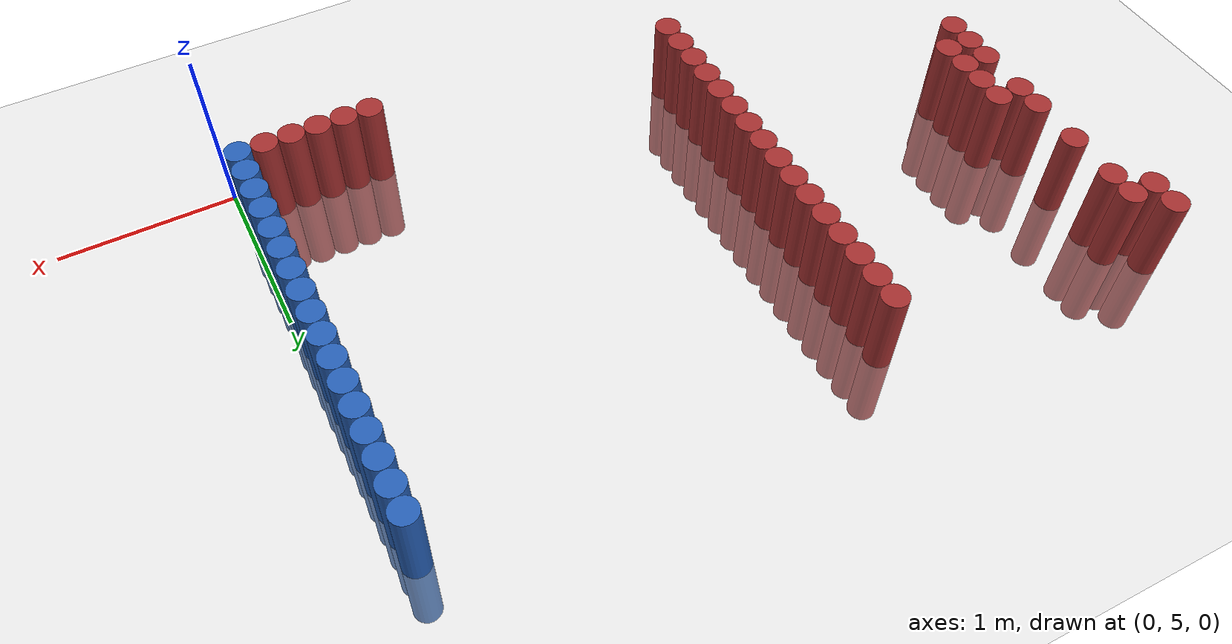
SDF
<sdf version="1.6">
 <world name="default">
  <model name="ground_plane">
   <static>1</static>
   <link name="link">
    <collision name="collision">
     <geometry><plane><normal>0 0 1</normal><size>100 100</size></plane></geometry>
     <surface><friction><ode><mu>100</mu><mu2>50</mu2></ode></friction></surface>
    </collision>
    <visual name="visual">
     <cast_shadows>0</cast_shadows>
     <geometry><plane><normal>0 0 1</normal><size>100 100</size></plane></geometry>
     <material>
      <script><uri>file://media/materials/scripts/gazebo.material</uri><name>Gazebo/Grey</name></script>
     </material>
    </visual>
   </link>
  </model>
  <model name="unit_cylinder_249">
   <static>1</static>
   <pose>-4.275000 7.575000 0.000000 0.000000 0.000000 0.000000</pose>
   <link name="link">
    <inertial>
     <mass>1</mass>
     <inertia><ixx>0.145833</ixx><ixy>0</ixy><ixz>0</ixz><iyy>0.145833</iyy><iyz>0</iyz><izz>0.125</izz></inertia>
    </inertial>
    <collision name="collision">
     <geometry><cylinder><radius>0.075000</radius><length>1</length></cylinder></geometry>
    </collision>
    <visual name="visual">
     <geometry><cylinder><radius>0.075000</radius><length>1</length></cylinder></geometry>
     <material>
      <ambient>0.648000 0.192000 0.192000 1</ambient>
      <diffuse>0.648000 0.192000 0.192000 1</diffuse>
     </material>
     <material>
      <script><name>Gazebo/Grey</name><uri>file://media/materials/scripts/gazebo.material</uri></script>
     </material>
    </visual>
   </link>
  </model>
  <model name="unit_cylinder_250">
   <static>1</static>
   <pose>-4.275000 7.725000 0.000000 0.000000 0.000000 0.000000</pose>
   <link name="link">
    <inertial>
     <mass>1</mass>
     <inertia><ixx>0.145833</ixx><ixy>0</ixy><ixz>0</ixz><iyy>0.145833</iyy><iyz>0</iyz><izz>0.125</izz></inertia>
    </inertial>
    <collision name="collision">
     <geometry><cylinder><radius>0.075000</radius><length>1</length></cylinder></geometry>
    </collision>
    <visual name="visual">
     <geometry><cylinder><radius>0.075000</radius><length>1</length></cylinder></geometry>
     <material>
      <ambient>0.648000 0.192000 0.192000 1</ambient>
      <diffuse>0.648000 0.192000 0.192000 1</diffuse>
     </material>
     <material>
      <script><name>Gazebo/Grey</name><uri>file://media/materials/scripts/gazebo.material</uri></script>
     </material>
    </visual>
   </link>
  </model>
  <model name="unit_cylinder_255">
   <static>1</static>
   <pose>-4.125000 6.075000 0.000000 0.000000 0.000000 0.000000</pose>
   <link name="link">
    <inertial>
     <mass>1</mass>
     <inertia><ixx>0.145833</ixx><ixy>0</ixy><ixz>0</ixz><iyy>0.145833</iyy><iyz>0</iyz><izz>0.125</izz></inertia>
    </inertial>
    <collision name="collision">
     <geometry><cylinder><radius>0.075000</radius><length>1</length></cylinder></geometry>
    </collision>
    <visual name="visual">
     <geometry><cylinder><radius>0.075000</radius><length>1</length></cylinder></geometry>
     <material>
      <ambient>0.648000 0.192000 0.192000 1</ambient>
      <diffuse>0.648000 0.192000 0.192000 1</diffuse>
     </material>
     <material>
      <script><name>Gazebo/Grey</name><uri>file://media/materials/scripts/gazebo.material</uri></script>
     </material>
    </visual>
   </link>
  </model>
  <model name="unit_cylinder_256">
   <static>1</static>
   <pose>-4.125000 6.225000 0.000000 0.000000 0.000000 0.000000</pose>
   <link name="link">
    <inertial>
     <mass>1</mass>
     <inertia><ixx>0.145833</ixx><ixy>0</ixy><ixz>0</ixz><iyy>0.145833</iyy><iyz>0</iyz><izz>0.125</izz></inertia>
    </inertial>
    <collision name="collision">
     <geometry><cylinder><radius>0.075000</radius><length>1</length></cylinder></geometry>
    </collision>
    <visual name="visual">
     <geometry><cylinder><radius>0.075000</radius><length>1</length></cylinder></geometry>
     <material>
      <ambient>0.648000 0.192000 0.192000 1</ambient>
      <diffuse>0.648000 0.192000 0.192000 1</diffuse>
     </material>
     <material>
      <script><name>Gazebo/Grey</name><uri>file://media/materials/scripts/gazebo.material</uri></script>
     </material>
    </visual>
   </link>
  </model>
  <model name="unit_cylinder_257">
   <static>1</static>
   <pose>-4.125000 6.375000 0.000000 0.000000 0.000000 0.000000</pose>
   <link name="link">
    <inertial>
     <mass>1</mass>
     <inertia><ixx>0.145833</ixx><ixy>0</ixy><ixz>0</ixz><iyy>0.145833</iyy><iyz>0</iyz><izz>0.125</izz></inertia>
    </inertial>
    <collision name="collision">
     <geometry><cylinder><radius>0.075000</radius><length>1</length></cylinder></geometry>
    </collision>
    <visual name="visual">
     <geometry><cylinder><radius>0.075000</radius><length>1</length></cylinder></geometry>
     <material>
      <ambient>0.648000 0.192000 0.192000 1</ambient>
      <diffuse>0.648000 0.192000 0.192000 1</diffuse>
     </material>
     <material>
      <script><name>Gazebo/Grey</name><uri>file://media/materials/scripts/gazebo.material</uri></script>
     </material>
    </visual>
   </link>
  </model>
  <model name="unit_cylinder_258">
   <static>1</static>
   <pose>-4.125000 6.675000 0.000000 0.000000 0.000000 0.000000</pose>
   <link name="link">
    <inertial>
     <mass>1</mass>
     <inertia><ixx>0.145833</ixx><ixy>0</ixy><ixz>0</ixz><iyy>0.145833</iyy><iyz>0</iyz><izz>0.125</izz></inertia>
    </inertial>
    <collision name="collision">
     <geometry><cylinder><radius>0.075000</radius><length>1</length></cylinder></geometry>
    </collision>
    <visual name="visual">
     <geometry><cylinder><radius>0.075000</radius><length>1</length></cylinder></geometry>
     <material>
      <ambient>0.648000 0.192000 0.192000 1</ambient>
      <diffuse>0.648000 0.192000 0.192000 1</diffuse>
     </material>
     <material>
      <script><name>Gazebo/Grey</name><uri>file://media/materials/scripts/gazebo.material</uri></script>
     </material>
    </visual>
   </link>
  </model>
  <model name="unit_cylinder_259">
   <static>1</static>
   <pose>-4.125000 6.825000 0.000000 0.000000 0.000000 0.000000</pose>
   <link name="link">
    <inertial>
     <mass>1</mass>
     <inertia><ixx>0.145833</ixx><ixy>0</ixy><ixz>0</ixz><iyy>0.145833</iyy><iyz>0</iyz><izz>0.125</izz></inertia>
    </inertial>
    <collision name="collision">
     <geometry><cylinder><radius>0.075000</radius><length>1</length></cylinder></geometry>
    </collision>
    <visual name="visual">
     <geometry><cylinder><radius>0.075000</radius><length>1</length></cylinder></geometry>
     <material>
      <ambient>0.648000 0.192000 0.192000 1</ambient>
      <diffuse>0.648000 0.192000 0.192000 1</diffuse>
     </material>
     <material>
      <script><name>Gazebo/Grey</name><uri>file://media/materials/scripts/gazebo.material</uri></script>
     </material>
    </visual>
   </link>
  </model>
  <model name="unit_cylinder_260">
   <static>1</static>
   <pose>-4.125000 7.125000 0.000000 0.000000 0.000000 0.000000</pose>
   <link name="link">
    <inertial>
     <mass>1</mass>
     <inertia><ixx>0.145833</ixx><ixy>0</ixy><ixz>0</ixz><iyy>0.145833</iyy><iyz>0</iyz><izz>0.125</izz></inertia>
    </inertial>
    <collision name="collision">
     <geometry><cylinder><radius>0.075000</radius><length>1</length></cylinder></geometry>
    </collision>
    <visual name="visual">
     <geometry><cylinder><radius>0.075000</radius><length>1</length></cylinder></geometry>
     <material>
      <ambient>0.648000 0.192000 0.192000 1</ambient>
      <diffuse>0.648000 0.192000 0.192000 1</diffuse>
     </material>
     <material>
      <script><name>Gazebo/Grey</name><uri>file://media/materials/scripts/gazebo.material</uri></script>
     </material>
    </visual>
   </link>
  </model>
  <model name="unit_cylinder_261">
   <static>1</static>
   <pose>-4.125000 7.425000 0.000000 0.000000 0.000000 0.000000</pose>
   <link name="link">
    <inertial>
     <mass>1</mass>
     <inertia><ixx>0.145833</ixx><ixy>0</ixy><ixz>0</ixz><iyy>0.145833</iyy><iyz>0</iyz><izz>0.125</izz></inertia>
    </inertial>
    <collision name="collision">
     <geometry><cylinder><radius>0.075000</radius><length>1</length></cylinder></geometry>
    </collision>
    <visual name="visual">
     <geometry><cylinder><radius>0.075000</radius><length>1</length></cylinder></geometry>
     <material>
      <ambient>0.648000 0.192000 0.192000 1</ambient>
      <diffuse>0.648000 0.192000 0.192000 1</diffuse>
     </material>
     <material>
      <script><name>Gazebo/Grey</name><uri>file://media/materials/scripts/gazebo.material</uri></script>
     </material>
    </visual>
   </link>
  </model>
  <model name="unit_cylinder_262">
   <static>1</static>
   <pose>-4.125000 7.575000 0.000000 0.000000 0.000000 0.000000</pose>
   <link name="link">
    <inertial>
     <mass>1</mass>
     <inertia><ixx>0.145833</ixx><ixy>0</ixy><ixz>0</ixz><iyy>0.145833</iyy><iyz>0</iyz><izz>0.125</izz></inertia>
    </inertial>
    <collision name="collision">
     <geometry><cylinder><radius>0.075000</radius><length>1</length></cylinder></geometry>
    </collision>
    <visual name="visual">
     <geometry><cylinder><radius>0.075000</radius><length>1</length></cylinder></geometry>
     <material>
      <ambient>0.648000 0.192000 0.192000 1</ambient>
      <diffuse>0.648000 0.192000 0.192000 1</diffuse>
     </material>
     <material>
      <script><name>Gazebo/Grey</name><uri>file://media/materials/scripts/gazebo.material</uri></script>
     </material>
    </visual>
   </link>
  </model>
  <model name="unit_cylinder_267">
   <static>1</static>
   <pose>-3.975000 6.225000 0.000000 0.000000 0.000000 0.000000</pose>
   <link name="link">
    <inertial>
     <mass>1</mass>
     <inertia><ixx>0.145833</ixx><ixy>0</ixy><ixz>0</ixz><iyy>0.145833</iyy><iyz>0</iyz><izz>0.125</izz></inertia>
    </inertial>
    <collision name="collision">
     <geometry><cylinder><radius>0.075000</radius><length>1</length></cylinder></geometry>
    </collision>
    <visual name="visual">
     <geometry><cylinder><radius>0.075000</radius><length>1</length></cylinder></geometry>
     <material>
      <ambient>0.648000 0.192000 0.192000 1</ambient>
      <diffuse>0.648000 0.192000 0.192000 1</diffuse>
     </material>
     <material>
      <script><name>Gazebo/Grey</name><uri>file://media/materials/scripts/gazebo.material</uri></script>
     </material>
    </visual>
   </link>
  </model>
  <model name="unit_cylinder_268">
   <static>1</static>
   <pose>-3.975000 6.375000 0.000000 0.000000 0.000000 0.000000</pose>
   <link name="link">
    <inertial>
     <mass>1</mass>
     <inertia><ixx>0.145833</ixx><ixy>0</ixy><ixz>0</ixz><iyy>0.145833</iyy><iyz>0</iyz><izz>0.125</izz></inertia>
    </inertial>
    <collision name="collision">
     <geometry><cylinder><radius>0.075000</radius><length>1</length></cylinder></geometry>
    </collision>
    <visual name="visual">
     <geometry><cylinder><radius>0.075000</radius><length>1</length></cylinder></geometry>
     <material>
      <ambient>0.648000 0.192000 0.192000 1</ambient>
      <diffuse>0.648000 0.192000 0.192000 1</diffuse>
     </material>
     <material>
      <script><name>Gazebo/Grey</name><uri>file://media/materials/scripts/gazebo.material</uri></script>
     </material>
    </visual>
   </link>
  </model>
  <model name="unit_cylinder_269">
   <static>1</static>
   <pose>-3.975000 6.525000 0.000000 0.000000 0.000000 0.000000</pose>
   <link name="link">
    <inertial>
     <mass>1</mass>
     <inertia><ixx>0.145833</ixx><ixy>0</ixy><ixz>0</ixz><iyy>0.145833</iyy><iyz>0</iyz><izz>0.125</izz></inertia>
    </inertial>
    <collision name="collision">
     <geometry><cylinder><radius>0.075000</radius><length>1</length></cylinder></geometry>
    </collision>
    <visual name="visual">
     <geometry><cylinder><radius>0.075000</radius><length>1</length></cylinder></geometry>
     <material>
      <ambient>0.648000 0.192000 0.192000 1</ambient>
      <diffuse>0.648000 0.192000 0.192000 1</diffuse>
     </material>
     <material>
      <script><name>Gazebo/Grey</name><uri>file://media/materials/scripts/gazebo.material</uri></script>
     </material>
    </visual>
   </link>
  </model>
  <model name="unit_cylinder_270">
   <static>1</static>
   <pose>-3.975000 6.675000 0.000000 0.000000 0.000000 0.000000</pose>
   <link name="link">
    <inertial>
     <mass>1</mass>
     <inertia><ixx>0.145833</ixx><ixy>0</ixy><ixz>0</ixz><iyy>0.145833</iyy><iyz>0</iyz><izz>0.125</izz></inertia>
    </inertial>
    <collision name="collision">
     <geometry><cylinder><radius>0.075000</radius><length>1</length></cylinder></geometry>
    </collision>
    <visual name="visual">
     <geometry><cylinder><radius>0.075000</radius><length>1</length></cylinder></geometry>
     <material>
      <ambient>0.648000 0.192000 0.192000 1</ambient>
      <diffuse>0.648000 0.192000 0.192000 1</diffuse>
     </material>
     <material>
      <script><name>Gazebo/Grey</name><uri>file://media/materials/scripts/gazebo.material</uri></script>
     </material>
    </visual>
   </link>
  </model>
  <model name="unit_cylinder_283">
   <static>1</static>
   <pose>-2.625000 5.325000 0.000000 0.000000 0.000000 0.000000</pose>
   <link name="link">
    <inertial>
     <mass>1</mass>
     <inertia><ixx>0.145833</ixx><ixy>0</ixy><ixz>0</ixz><iyy>0.145833</iyy><iyz>0</iyz><izz>0.125</izz></inertia>
    </inertial>
    <collision name="collision">
     <geometry><cylinder><radius>0.075000</radius><length>1</length></cylinder></geometry>
    </collision>
    <visual name="visual">
     <geometry><cylinder><radius>0.075000</radius><length>1</length></cylinder></geometry>
     <material>
      <ambient>0.648000 0.192000 0.192000 1</ambient>
      <diffuse>0.648000 0.192000 0.192000 1</diffuse>
     </material>
     <material>
      <script><name>Gazebo/Grey</name><uri>file://media/materials/scripts/gazebo.material</uri></script>
     </material>
    </visual>
   </link>
  </model>
  <model name="unit_cylinder_284">
   <static>1</static>
   <pose>-2.625000 5.475000 0.000000 0.000000 0.000000 0.000000</pose>
   <link name="link">
    <inertial>
     <mass>1</mass>
     <inertia><ixx>0.145833</ixx><ixy>0</ixy><ixz>0</ixz><iyy>0.145833</iyy><iyz>0</iyz><izz>0.125</izz></inertia>
    </inertial>
    <collision name="collision">
     <geometry><cylinder><radius>0.075000</radius><length>1</length></cylinder></geometry>
    </collision>
    <visual name="visual">
     <geometry><cylinder><radius>0.075000</radius><length>1</length></cylinder></geometry>
     <material>
      <ambient>0.648000 0.192000 0.192000 1</ambient>
      <diffuse>0.648000 0.192000 0.192000 1</diffuse>
     </material>
     <material>
      <script><name>Gazebo/Grey</name><uri>file://media/materials/scripts/gazebo.material</uri></script>
     </material>
    </visual>
   </link>
  </model>
  <model name="unit_cylinder_285">
   <static>1</static>
   <pose>-2.625000 5.625000 0.000000 0.000000 0.000000 0.000000</pose>
   <link name="link">
    <inertial>
     <mass>1</mass>
     <inertia><ixx>0.145833</ixx><ixy>0</ixy><ixz>0</ixz><iyy>0.145833</iyy><iyz>0</iyz><izz>0.125</izz></inertia>
    </inertial>
    <collision name="collision">
     <geometry><cylinder><radius>0.075000</radius><length>1</length></cylinder></geometry>
    </collision>
    <visual name="visual">
     <geometry><cylinder><radius>0.075000</radius><length>1</length></cylinder></geometry>
     <material>
      <ambient>0.648000 0.192000 0.192000 1</ambient>
      <diffuse>0.648000 0.192000 0.192000 1</diffuse>
     </material>
     <material>
      <script><name>Gazebo/Grey</name><uri>file://media/materials/scripts/gazebo.material</uri></script>
     </material>
    </visual>
   </link>
  </model>
  <model name="unit_cylinder_286">
   <static>1</static>
   <pose>-2.625000 5.775000 0.000000 0.000000 0.000000 0.000000</pose>
   <link name="link">
    <inertial>
     <mass>1</mass>
     <inertia><ixx>0.145833</ixx><ixy>0</ixy><ixz>0</ixz><iyy>0.145833</iyy><iyz>0</iyz><izz>0.125</izz></inertia>
    </inertial>
    <collision name="collision">
     <geometry><cylinder><radius>0.075000</radius><length>1</length></cylinder></geometry>
    </collision>
    <visual name="visual">
     <geometry><cylinder><radius>0.075000</radius><length>1</length></cylinder></geometry>
     <material>
      <ambient>0.648000 0.192000 0.192000 1</ambient>
      <diffuse>0.648000 0.192000 0.192000 1</diffuse>
     </material>
     <material>
      <script><name>Gazebo/Grey</name><uri>file://media/materials/scripts/gazebo.material</uri></script>
     </material>
    </visual>
   </link>
  </model>
  <model name="unit_cylinder_287">
   <static>1</static>
   <pose>-2.625000 5.925000 0.000000 0.000000 0.000000 0.000000</pose>
   <link name="link">
    <inertial>
     <mass>1</mass>
     <inertia><ixx>0.145833</ixx><ixy>0</ixy><ixz>0</ixz><iyy>0.145833</iyy><iyz>0</iyz><izz>0.125</izz></inertia>
    </inertial>
    <collision name="collision">
     <geometry><cylinder><radius>0.075000</radius><length>1</length></cylinder></geometry>
    </collision>
    <visual name="visual">
     <geometry><cylinder><radius>0.075000</radius><length>1</length></cylinder></geometry>
     <material>
      <ambient>0.648000 0.192000 0.192000 1</ambient>
      <diffuse>0.648000 0.192000 0.192000 1</diffuse>
     </material>
     <material>
      <script><name>Gazebo/Grey</name><uri>file://media/materials/scripts/gazebo.material</uri></script>
     </material>
    </visual>
   </link>
  </model>
  <model name="unit_cylinder_288">
   <static>1</static>
   <pose>-2.625000 6.075000 0.000000 0.000000 0.000000 0.000000</pose>
   <link name="link">
    <inertial>
     <mass>1</mass>
     <inertia><ixx>0.145833</ixx><ixy>0</ixy><ixz>0</ixz><iyy>0.145833</iyy><iyz>0</iyz><izz>0.125</izz></inertia>
    </inertial>
    <collision name="collision">
     <geometry><cylinder><radius>0.075000</radius><length>1</length></cylinder></geometry>
    </collision>
    <visual name="visual">
     <geometry><cylinder><radius>0.075000</radius><length>1</length></cylinder></geometry>
     <material>
      <ambient>0.648000 0.192000 0.192000 1</ambient>
      <diffuse>0.648000 0.192000 0.192000 1</diffuse>
     </material>
     <material>
      <script><name>Gazebo/Grey</name><uri>file://media/materials/scripts/gazebo.material</uri></script>
     </material>
    </visual>
   </link>
  </model>
  <model name="unit_cylinder_289">
   <static>1</static>
   <pose>-2.625000 6.225000 0.000000 0.000000 0.000000 0.000000</pose>
   <link name="link">
    <inertial>
     <mass>1</mass>
     <inertia><ixx>0.145833</ixx><ixy>0</ixy><ixz>0</ixz><iyy>0.145833</iyy><iyz>0</iyz><izz>0.125</izz></inertia>
    </inertial>
    <collision name="collision">
     <geometry><cylinder><radius>0.075000</radius><length>1</length></cylinder></geometry>
    </collision>
    <visual name="visual">
     <geometry><cylinder><radius>0.075000</radius><length>1</length></cylinder></geometry>
     <material>
      <ambient>0.648000 0.192000 0.192000 1</ambient>
      <diffuse>0.648000 0.192000 0.192000 1</diffuse>
     </material>
     <material>
      <script><name>Gazebo/Grey</name><uri>file://media/materials/scripts/gazebo.material</uri></script>
     </material>
    </visual>
   </link>
  </model>
  <model name="unit_cylinder_290">
   <static>1</static>
   <pose>-2.625000 6.375000 0.000000 0.000000 0.000000 0.000000</pose>
   <link name="link">
    <inertial>
     <mass>1</mass>
     <inertia><ixx>0.145833</ixx><ixy>0</ixy><ixz>0</ixz><iyy>0.145833</iyy><iyz>0</iyz><izz>0.125</izz></inertia>
    </inertial>
    <collision name="collision">
     <geometry><cylinder><radius>0.075000</radius><length>1</length></cylinder></geometry>
    </collision>
    <visual name="visual">
     <geometry><cylinder><radius>0.075000</radius><length>1</length></cylinder></geometry>
     <material>
      <ambient>0.648000 0.192000 0.192000 1</ambient>
      <diffuse>0.648000 0.192000 0.192000 1</diffuse>
     </material>
     <material>
      <script><name>Gazebo/Grey</name><uri>file://media/materials/scripts/gazebo.material</uri></script>
     </material>
    </visual>
   </link>
  </model>
  <model name="unit_cylinder_291">
   <static>1</static>
   <pose>-2.625000 6.525000 0.000000 0.000000 0.000000 0.000000</pose>
   <link name="link">
    <inertial>
     <mass>1</mass>
     <inertia><ixx>0.145833</ixx><ixy>0</ixy><ixz>0</ixz><iyy>0.145833</iyy><iyz>0</iyz><izz>0.125</izz></inertia>
    </inertial>
    <collision name="collision">
     <geometry><cylinder><radius>0.075000</radius><length>1</length></cylinder></geometry>
    </collision>
    <visual name="visual">
     <geometry><cylinder><radius>0.075000</radius><length>1</length></cylinder></geometry>
     <material>
      <ambient>0.648000 0.192000 0.192000 1</ambient>
      <diffuse>0.648000 0.192000 0.192000 1</diffuse>
     </material>
     <material>
      <script><name>Gazebo/Grey</name><uri>file://media/materials/scripts/gazebo.material</uri></script>
     </material>
    </visual>
   </link>
  </model>
  <model name="unit_cylinder_292">
   <static>1</static>
   <pose>-2.625000 6.675000 0.000000 0.000000 0.000000 0.000000</pose>
   <link name="link">
    <inertial>
     <mass>1</mass>
     <inertia><ixx>0.145833</ixx><ixy>0</ixy><ixz>0</ixz><iyy>0.145833</iyy><iyz>0</iyz><izz>0.125</izz></inertia>
    </inertial>
    <collision name="collision">
     <geometry><cylinder><radius>0.075000</radius><length>1</length></cylinder></geometry>
    </collision>
    <visual name="visual">
     <geometry><cylinder><radius>0.075000</radius><length>1</length></cylinder></geometry>
     <material>
      <ambient>0.648000 0.192000 0.192000 1</ambient>
      <diffuse>0.648000 0.192000 0.192000 1</diffuse>
     </material>
     <material>
      <script><name>Gazebo/Grey</name><uri>file://media/materials/scripts/gazebo.material</uri></script>
     </material>
    </visual>
   </link>
  </model>
  <model name="unit_cylinder_293">
   <static>1</static>
   <pose>-2.625000 6.825000 0.000000 0.000000 0.000000 0.000000</pose>
   <link name="link">
    <inertial>
     <mass>1</mass>
     <inertia><ixx>0.145833</ixx><ixy>0</ixy><ixz>0</ixz><iyy>0.145833</iyy><iyz>0</iyz><izz>0.125</izz></inertia>
    </inertial>
    <collision name="collision">
     <geometry><cylinder><radius>0.075000</radius><length>1</length></cylinder></geometry>
    </collision>
    <visual name="visual">
     <geometry><cylinder><radius>0.075000</radius><length>1</length></cylinder></geometry>
     <material>
      <ambient>0.648000 0.192000 0.192000 1</ambient>
      <diffuse>0.648000 0.192000 0.192000 1</diffuse>
     </material>
     <material>
      <script><name>Gazebo/Grey</name><uri>file://media/materials/scripts/gazebo.material</uri></script>
     </material>
    </visual>
   </link>
  </model>
  <model name="unit_cylinder_294">
   <static>1</static>
   <pose>-2.625000 6.975000 0.000000 0.000000 0.000000 0.000000</pose>
   <link name="link">
    <inertial>
     <mass>1</mass>
     <inertia><ixx>0.145833</ixx><ixy>0</ixy><ixz>0</ixz><iyy>0.145833</iyy><iyz>0</iyz><izz>0.125</izz></inertia>
    </inertial>
    <collision name="collision">
     <geometry><cylinder><radius>0.075000</radius><length>1</length></cylinder></geometry>
    </collision>
    <visual name="visual">
     <geometry><cylinder><radius>0.075000</radius><length>1</length></cylinder></geometry>
     <material>
      <ambient>0.648000 0.192000 0.192000 1</ambient>
      <diffuse>0.648000 0.192000 0.192000 1</diffuse>
     </material>
     <material>
      <script><name>Gazebo/Grey</name><uri>file://media/materials/scripts/gazebo.material</uri></script>
     </material>
    </visual>
   </link>
  </model>
  <model name="unit_cylinder_295">
   <static>1</static>
   <pose>-2.625000 7.125000 0.000000 0.000000 0.000000 0.000000</pose>
   <link name="link">
    <inertial>
     <mass>1</mass>
     <inertia><ixx>0.145833</ixx><ixy>0</ixy><ixz>0</ixz><iyy>0.145833</iyy><iyz>0</iyz><izz>0.125</izz></inertia>
    </inertial>
    <collision name="collision">
     <geometry><cylinder><radius>0.075000</radius><length>1</length></cylinder></geometry>
    </collision>
    <visual name="visual">
     <geometry><cylinder><radius>0.075000</radius><length>1</length></cylinder></geometry>
     <material>
      <ambient>0.648000 0.192000 0.192000 1</ambient>
      <diffuse>0.648000 0.192000 0.192000 1</diffuse>
     </material>
     <material>
      <script><name>Gazebo/Grey</name><uri>file://media/materials/scripts/gazebo.material</uri></script>
     </material>
    </visual>
   </link>
  </model>
  <model name="unit_cylinder_296">
   <static>1</static>
   <pose>-2.625000 7.275000 0.000000 0.000000 0.000000 0.000000</pose>
   <link name="link">
    <inertial>
     <mass>1</mass>
     <inertia><ixx>0.145833</ixx><ixy>0</ixy><ixz>0</ixz><iyy>0.145833</iyy><iyz>0</iyz><izz>0.125</izz></inertia>
    </inertial>
    <collision name="collision">
     <geometry><cylinder><radius>0.075000</radius><length>1</length></cylinder></geometry>
    </collision>
    <visual name="visual">
     <geometry><cylinder><radius>0.075000</radius><length>1</length></cylinder></geometry>
     <material>
      <ambient>0.648000 0.192000 0.192000 1</ambient>
      <diffuse>0.648000 0.192000 0.192000 1</diffuse>
     </material>
     <material>
      <script><name>Gazebo/Grey</name><uri>file://media/materials/scripts/gazebo.material</uri></script>
     </material>
    </visual>
   </link>
  </model>
  <model name="unit_cylinder_297">
   <static>1</static>
   <pose>-2.625000 7.425000 0.000000 0.000000 0.000000 0.000000</pose>
   <link name="link">
    <inertial>
     <mass>1</mass>
     <inertia><ixx>0.145833</ixx><ixy>0</ixy><ixz>0</ixz><iyy>0.145833</iyy><iyz>0</iyz><izz>0.125</izz></inertia>
    </inertial>
    <collision name="collision">
     <geometry><cylinder><radius>0.075000</radius><length>1</length></cylinder></geometry>
    </collision>
    <visual name="visual">
     <geometry><cylinder><radius>0.075000</radius><length>1</length></cylinder></geometry>
     <material>
      <ambient>0.648000 0.192000 0.192000 1</ambient>
      <diffuse>0.648000 0.192000 0.192000 1</diffuse>
     </material>
     <material>
      <script><name>Gazebo/Grey</name><uri>file://media/materials/scripts/gazebo.material</uri></script>
     </material>
    </visual>
   </link>
  </model>
  <model name="unit_cylinder_298">
   <static>1</static>
   <pose>-2.625000 7.575000 0.000000 0.000000 0.000000 0.000000</pose>
   <link name="link">
    <inertial>
     <mass>1</mass>
     <inertia><ixx>0.145833</ixx><ixy>0</ixy><ixz>0</ixz><iyy>0.145833</iyy><iyz>0</iyz><izz>0.125</izz></inertia>
    </inertial>
    <collision name="collision">
     <geometry><cylinder><radius>0.075000</radius><length>1</length></cylinder></geometry>
    </collision>
    <visual name="visual">
     <geometry><cylinder><radius>0.075000</radius><length>1</length></cylinder></geometry>
     <material>
      <ambient>0.648000 0.192000 0.192000 1</ambient>
      <diffuse>0.648000 0.192000 0.192000 1</diffuse>
     </material>
     <material>
      <script><name>Gazebo/Grey</name><uri>file://media/materials/scripts/gazebo.material</uri></script>
     </material>
    </visual>
   </link>
  </model>
  <model name="unit_cylinder_325">
   <static>1</static>
   <pose>-0.825000 5.175000 0.000000 0.000000 0.000000 0.000000</pose>
   <link name="link">
    <inertial>
     <mass>1</mass>
     <inertia><ixx>0.145833</ixx><ixy>0</ixy><ixz>0</ixz><iyy>0.145833</iyy><iyz>0</iyz><izz>0.125</izz></inertia>
    </inertial>
    <collision name="collision">
     <geometry><cylinder><radius>0.075000</radius><length>1</length></cylinder></geometry>
    </collision>
    <visual name="visual">
     <geometry><cylinder><radius>0.075000</radius><length>1</length></cylinder></geometry>
     <material>
      <ambient>0.648000 0.192000 0.192000 1</ambient>
      <diffuse>0.648000 0.192000 0.192000 1</diffuse>
     </material>
     <material>
      <script><name>Gazebo/Grey</name><uri>file://media/materials/scripts/gazebo.material</uri></script>
     </material>
    </visual>
   </link>
  </model>
  <model name="unit_cylinder_327">
   <static>1</static>
   <pose>-0.675000 5.175000 0.000000 0.000000 0.000000 0.000000</pose>
   <link name="link">
    <inertial>
     <mass>1</mass>
     <inertia><ixx>0.145833</ixx><ixy>0</ixy><ixz>0</ixz><iyy>0.145833</iyy><iyz>0</iyz><izz>0.125</izz></inertia>
    </inertial>
    <collision name="collision">
     <geometry><cylinder><radius>0.075000</radius><length>1</length></cylinder></geometry>
    </collision>
    <visual name="visual">
     <geometry><cylinder><radius>0.075000</radius><length>1</length></cylinder></geometry>
     <material>
      <ambient>0.648000 0.192000 0.192000 1</ambient>
      <diffuse>0.648000 0.192000 0.192000 1</diffuse>
     </material>
     <material>
      <script><name>Gazebo/Grey</name><uri>file://media/materials/scripts/gazebo.material</uri></script>
     </material>
    </visual>
   </link>
  </model>
  <model name="unit_cylinder_329">
   <static>1</static>
   <pose>-0.525000 5.175000 0.000000 0.000000 0.000000 0.000000</pose>
   <link name="link">
    <inertial>
     <mass>1</mass>
     <inertia><ixx>0.145833</ixx><ixy>0</ixy><ixz>0</ixz><iyy>0.145833</iyy><iyz>0</iyz><izz>0.125</izz></inertia>
    </inertial>
    <collision name="collision">
     <geometry><cylinder><radius>0.075000</radius><length>1</length></cylinder></geometry>
    </collision>
    <visual name="visual">
     <geometry><cylinder><radius>0.075000</radius><length>1</length></cylinder></geometry>
     <material>
      <ambient>0.648000 0.192000 0.192000 1</ambient>
      <diffuse>0.648000 0.192000 0.192000 1</diffuse>
     </material>
     <material>
      <script><name>Gazebo/Grey</name><uri>file://media/materials/scripts/gazebo.material</uri></script>
     </material>
    </visual>
   </link>
  </model>
  <model name="unit_cylinder_331">
   <static>1</static>
   <pose>-0.375000 5.175000 0.000000 0.000000 0.000000 0.000000</pose>
   <link name="link">
    <inertial>
     <mass>1</mass>
     <inertia><ixx>0.145833</ixx><ixy>0</ixy><ixz>0</ixz><iyy>0.145833</iyy><iyz>0</iyz><izz>0.125</izz></inertia>
    </inertial>
    <collision name="collision">
     <geometry><cylinder><radius>0.075000</radius><length>1</length></cylinder></geometry>
    </collision>
    <visual name="visual">
     <geometry><cylinder><radius>0.075000</radius><length>1</length></cylinder></geometry>
     <material>
      <ambient>0.648000 0.192000 0.192000 1</ambient>
      <diffuse>0.648000 0.192000 0.192000 1</diffuse>
     </material>
     <material>
      <script><name>Gazebo/Grey</name><uri>file://media/materials/scripts/gazebo.material</uri></script>
     </material>
    </visual>
   </link>
  </model>
  <model name="unit_cylinder_333">
   <static>1</static>
   <pose>-0.225000 5.175000 0.000000 0.000000 0.000000 0.000000</pose>
   <link name="link">
    <inertial>
     <mass>1</mass>
     <inertia><ixx>0.145833</ixx><ixy>0</ixy><ixz>0</ixz><iyy>0.145833</iyy><iyz>0</iyz><izz>0.125</izz></inertia>
    </inertial>
    <collision name="collision">
     <geometry><cylinder><radius>0.075000</radius><length>1</length></cylinder></geometry>
    </collision>
    <visual name="visual">
     <geometry><cylinder><radius>0.075000</radius><length>1</length></cylinder></geometry>
     <material>
      <ambient>0.648000 0.192000 0.192000 1</ambient>
      <diffuse>0.648000 0.192000 0.192000 1</diffuse>
     </material>
     <material>
      <script><name>Gazebo/Grey</name><uri>file://media/materials/scripts/gazebo.material</uri></script>
     </material>
    </visual>
   </link>
  </model>
  <model name="unit_cylinder_335">
   <static>1</static>
   <pose>-0.075000 5.175000 0.000000 0.000000 0.000000 0.000000</pose>
   <link name="link">
    <inertial>
     <mass>1</mass>
     <inertia><ixx>0.145833</ixx><ixy>0</ixy><ixz>0</ixz><iyy>0.145833</iyy><iyz>0</iyz><izz>0.125</izz></inertia>
    </inertial>
    <collision name="collision">
     <geometry><cylinder><radius>0.075000</radius><length>1</length></cylinder></geometry>
    </collision>
    <visual name="visual">
     <geometry><cylinder><radius>0.075000</radius><length>1</length></cylinder></geometry>
     <material>
      <ambient>0.152000 0.379000 0.720000 1</ambient>
      <diffuse>0.152000 0.379000 0.720000 1</diffuse>
     </material>
     <material>
      <script><name>Gazebo/Grey</name><uri>file://media/materials/scripts/gazebo.material</uri></script>
     </material>
    </visual>
   </link>
  </model>
  <model name="unit_cylinder_336">
   <static>1</static>
   <pose>-0.075000 5.325000 0.000000 0.000000 0.000000 0.000000</pose>
   <link name="link">
    <inertial>
     <mass>1</mass>
     <inertia><ixx>0.145833</ixx><ixy>0</ixy><ixz>0</ixz><iyy>0.145833</iyy><iyz>0</iyz><izz>0.125</izz></inertia>
    </inertial>
    <collision name="collision">
     <geometry><cylinder><radius>0.075000</radius><length>1</length></cylinder></geometry>
    </collision>
    <visual name="visual">
     <geometry><cylinder><radius>0.075000</radius><length>1</length></cylinder></geometry>
     <material>
      <ambient>0.152000 0.379000 0.720000 1</ambient>
      <diffuse>0.152000 0.379000 0.720000 1</diffuse>
     </material>
     <material>
      <script><name>Gazebo/Grey</name><uri>file://media/materials/scripts/gazebo.material</uri></script>
     </material>
    </visual>
   </link>
  </model>
  <model name="unit_cylinder_337">
   <static>1</static>
   <pose>-0.075000 5.475000 0.000000 0.000000 0.000000 0.000000</pose>
   <link name="link">
    <inertial>
     <mass>1</mass>
     <inertia><ixx>0.145833</ixx><ixy>0</ixy><ixz>0</ixz><iyy>0.145833</iyy><iyz>0</iyz><izz>0.125</izz></inertia>
    </inertial>
    <collision name="collision">
     <geometry><cylinder><radius>0.075000</radius><length>1</length></cylinder></geometry>
    </collision>
    <visual name="visual">
     <geometry><cylinder><radius>0.075000</radius><length>1</length></cylinder></geometry>
     <material>
      <ambient>0.152000 0.379000 0.720000 1</ambient>
      <diffuse>0.152000 0.379000 0.720000 1</diffuse>
     </material>
     <material>
      <script><name>Gazebo/Grey</name><uri>file://media/materials/scripts/gazebo.material</uri></script>
     </material>
    </visual>
   </link>
  </model>
  <model name="unit_cylinder_338">
   <static>1</static>
   <pose>-0.075000 5.625000 0.000000 0.000000 0.000000 0.000000</pose>
   <link name="link">
    <inertial>
     <mass>1</mass>
     <inertia><ixx>0.145833</ixx><ixy>0</ixy><ixz>0</ixz><iyy>0.145833</iyy><iyz>0</iyz><izz>0.125</izz></inertia>
    </inertial>
    <collision name="collision">
     <geometry><cylinder><radius>0.075000</radius><length>1</length></cylinder></geometry>
    </collision>
    <visual name="visual">
     <geometry><cylinder><radius>0.075000</radius><length>1</length></cylinder></geometry>
     <material>
      <ambient>0.152000 0.379000 0.720000 1</ambient>
      <diffuse>0.152000 0.379000 0.720000 1</diffuse>
     </material>
     <material>
      <script><name>Gazebo/Grey</name><uri>file://media/materials/scripts/gazebo.material</uri></script>
     </material>
    </visual>
   </link>
  </model>
  <model name="unit_cylinder_339">
   <static>1</static>
   <pose>-0.075000 5.775000 0.000000 0.000000 0.000000 0.000000</pose>
   <link name="link">
    <inertial>
     <mass>1</mass>
     <inertia><ixx>0.145833</ixx><ixy>0</ixy><ixz>0</ixz><iyy>0.145833</iyy><iyz>0</iyz><izz>0.125</izz></inertia>
    </inertial>
    <collision name="collision">
     <geometry><cylinder><radius>0.075000</radius><length>1</length></cylinder></geometry>
    </collision>
    <visual name="visual">
     <geometry><cylinder><radius>0.075000</radius><length>1</length></cylinder></geometry>
     <material>
      <ambient>0.152000 0.379000 0.720000 1</ambient>
      <diffuse>0.152000 0.379000 0.720000 1</diffuse>
     </material>
     <material>
      <script><name>Gazebo/Grey</name><uri>file://media/materials/scripts/gazebo.material</uri></script>
     </material>
    </visual>
   </link>
  </model>
  <model name="unit_cylinder_340">
   <static>1</static>
   <pose>-0.075000 5.925000 0.000000 0.000000 0.000000 0.000000</pose>
   <link name="link">
    <inertial>
     <mass>1</mass>
     <inertia><ixx>0.145833</ixx><ixy>0</ixy><ixz>0</ixz><iyy>0.145833</iyy><iyz>0</iyz><izz>0.125</izz></inertia>
    </inertial>
    <collision name="collision">
     <geometry><cylinder><radius>0.075000</radius><length>1</length></cylinder></geometry>
    </collision>
    <visual name="visual">
     <geometry><cylinder><radius>0.075000</radius><length>1</length></cylinder></geometry>
     <material>
      <ambient>0.152000 0.379000 0.720000 1</ambient>
      <diffuse>0.152000 0.379000 0.720000 1</diffuse>
     </material>
     <material>
      <script><name>Gazebo/Grey</name><uri>file://media/materials/scripts/gazebo.material</uri></script>
     </material>
    </visual>
   </link>
  </model>
  <model name="unit_cylinder_341">
   <static>1</static>
   <pose>-0.075000 6.075000 0.000000 0.000000 0.000000 0.000000</pose>
   <link name="link">
    <inertial>
     <mass>1</mass>
     <inertia><ixx>0.145833</ixx><ixy>0</ixy><ixz>0</ixz><iyy>0.145833</iyy><iyz>0</iyz><izz>0.125</izz></inertia>
    </inertial>
    <collision name="collision">
     <geometry><cylinder><radius>0.075000</radius><length>1</length></cylinder></geometry>
    </collision>
    <visual name="visual">
     <geometry><cylinder><radius>0.075000</radius><length>1</length></cylinder></geometry>
     <material>
      <ambient>0.152000 0.379000 0.720000 1</ambient>
      <diffuse>0.152000 0.379000 0.720000 1</diffuse>
     </material>
     <material>
      <script><name>Gazebo/Grey</name><uri>file://media/materials/scripts/gazebo.material</uri></script>
     </material>
    </visual>
   </link>
  </model>
  <model name="unit_cylinder_342">
   <static>1</static>
   <pose>-0.075000 6.225000 0.000000 0.000000 0.000000 0.000000</pose>
   <link name="link">
    <inertial>
     <mass>1</mass>
     <inertia><ixx>0.145833</ixx><ixy>0</ixy><ixz>0</ixz><iyy>0.145833</iyy><iyz>0</iyz><izz>0.125</izz></inertia>
    </inertial>
    <collision name="collision">
     <geometry><cylinder><radius>0.075000</radius><length>1</length></cylinder></geometry>
    </collision>
    <visual name="visual">
     <geometry><cylinder><radius>0.075000</radius><length>1</length></cylinder></geometry>
     <material>
      <ambient>0.152000 0.379000 0.720000 1</ambient>
      <diffuse>0.152000 0.379000 0.720000 1</diffuse>
     </material>
     <material>
      <script><name>Gazebo/Grey</name><uri>file://media/materials/scripts/gazebo.material</uri></script>
     </material>
    </visual>
   </link>
  </model>
  <model name="unit_cylinder_343">
   <static>1</static>
   <pose>-0.075000 6.375000 0.000000 0.000000 0.000000 0.000000</pose>
   <link name="link">
    <inertial>
     <mass>1</mass>
     <inertia><ixx>0.145833</ixx><ixy>0</ixy><ixz>0</ixz><iyy>0.145833</iyy><iyz>0</iyz><izz>0.125</izz></inertia>
    </inertial>
    <collision name="collision">
     <geometry><cylinder><radius>0.075000</radius><length>1</length></cylinder></geometry>
    </collision>
    <visual name="visual">
     <geometry><cylinder><radius>0.075000</radius><length>1</length></cylinder></geometry>
     <material>
      <ambient>0.152000 0.379000 0.720000 1</ambient>
      <diffuse>0.152000 0.379000 0.720000 1</diffuse>
     </material>
     <material>
      <script><name>Gazebo/Grey</name><uri>file://media/materials/scripts/gazebo.material</uri></script>
     </material>
    </visual>
   </link>
  </model>
  <model name="unit_cylinder_344">
   <static>1</static>
   <pose>-0.075000 6.525000 0.000000 0.000000 0.000000 0.000000</pose>
   <link name="link">
    <inertial>
     <mass>1</mass>
     <inertia><ixx>0.145833</ixx><ixy>0</ixy><ixz>0</ixz><iyy>0.145833</iyy><iyz>0</iyz><izz>0.125</izz></inertia>
    </inertial>
    <collision name="collision">
     <geometry><cylinder><radius>0.075000</radius><length>1</length></cylinder></geometry>
    </collision>
    <visual name="visual">
     <geometry><cylinder><radius>0.075000</radius><length>1</length></cylinder></geometry>
     <material>
      <ambient>0.152000 0.379000 0.720000 1</ambient>
      <diffuse>0.152000 0.379000 0.720000 1</diffuse>
     </material>
     <material>
      <script><name>Gazebo/Grey</name><uri>file://media/materials/scripts/gazebo.material</uri></script>
     </material>
    </visual>
   </link>
  </model>
  <model name="unit_cylinder_345">
   <static>1</static>
   <pose>-0.075000 6.675000 0.000000 0.000000 0.000000 0.000000</pose>
   <link name="link">
    <inertial>
     <mass>1</mass>
     <inertia><ixx>0.145833</ixx><ixy>0</ixy><ixz>0</ixz><iyy>0.145833</iyy><iyz>0</iyz><izz>0.125</izz></inertia>
    </inertial>
    <collision name="collision">
     <geometry><cylinder><radius>0.075000</radius><length>1</length></cylinder></geometry>
    </collision>
    <visual name="visual">
     <geometry><cylinder><radius>0.075000</radius><length>1</length></cylinder></geometry>
     <material>
      <ambient>0.152000 0.379000 0.720000 1</ambient>
      <diffuse>0.152000 0.379000 0.720000 1</diffuse>
     </material>
     <material>
      <script><name>Gazebo/Grey</name><uri>file://media/materials/scripts/gazebo.material</uri></script>
     </material>
    </visual>
   </link>
  </model>
  <model name="unit_cylinder_346">
   <static>1</static>
   <pose>-0.075000 6.825000 0.000000 0.000000 0.000000 0.000000</pose>
   <link name="link">
    <inertial>
     <mass>1</mass>
     <inertia><ixx>0.145833</ixx><ixy>0</ixy><ixz>0</ixz><iyy>0.145833</iyy><iyz>0</iyz><izz>0.125</izz></inertia>
    </inertial>
    <collision name="collision">
     <geometry><cylinder><radius>0.075000</radius><length>1</length></cylinder></geometry>
    </collision>
    <visual name="visual">
     <geometry><cylinder><radius>0.075000</radius><length>1</length></cylinder></geometry>
     <material>
      <ambient>0.152000 0.379000 0.720000 1</ambient>
      <diffuse>0.152000 0.379000 0.720000 1</diffuse>
     </material>
     <material>
      <script><name>Gazebo/Grey</name><uri>file://media/materials/scripts/gazebo.material</uri></script>
     </material>
    </visual>
   </link>
  </model>
  <model name="unit_cylinder_347">
   <static>1</static>
   <pose>-0.075000 6.975000 0.000000 0.000000 0.000000 0.000000</pose>
   <link name="link">
    <inertial>
     <mass>1</mass>
     <inertia><ixx>0.145833</ixx><ixy>0</ixy><ixz>0</ixz><iyy>0.145833</iyy><iyz>0</iyz><izz>0.125</izz></inertia>
    </inertial>
    <collision name="collision">
     <geometry><cylinder><radius>0.075000</radius><length>1</length></cylinder></geometry>
    </collision>
    <visual name="visual">
     <geometry><cylinder><radius>0.075000</radius><length>1</length></cylinder></geometry>
     <material>
      <ambient>0.152000 0.379000 0.720000 1</ambient>
      <diffuse>0.152000 0.379000 0.720000 1</diffuse>
     </material>
     <material>
      <script><name>Gazebo/Grey</name><uri>file://media/materials/scripts/gazebo.material</uri></script>
     </material>
    </visual>
   </link>
  </model>
  <model name="unit_cylinder_348">
   <static>1</static>
   <pose>-0.075000 7.125000 0.000000 0.000000 0.000000 0.000000</pose>
   <link name="link">
    <inertial>
     <mass>1</mass>
     <inertia><ixx>0.145833</ixx><ixy>0</ixy><ixz>0</ixz><iyy>0.145833</iyy><iyz>0</iyz><izz>0.125</izz></inertia>
    </inertial>
    <collision name="collision">
     <geometry><cylinder><radius>0.075000</radius><length>1</length></cylinder></geometry>
    </collision>
    <visual name="visual">
     <geometry><cylinder><radius>0.075000</radius><length>1</length></cylinder></geometry>
     <material>
      <ambient>0.152000 0.379000 0.720000 1</ambient>
      <diffuse>0.152000 0.379000 0.720000 1</diffuse>
     </material>
     <material>
      <script><name>Gazebo/Grey</name><uri>file://media/materials/scripts/gazebo.material</uri></script>
     </material>
    </visual>
   </link>
  </model>
  <model name="unit_cylinder_349">
   <static>1</static>
   <pose>-0.075000 7.275000 0.000000 0.000000 0.000000 0.000000</pose>
   <link name="link">
    <inertial>
     <mass>1</mass>
     <inertia><ixx>0.145833</ixx><ixy>0</ixy><ixz>0</ixz><iyy>0.145833</iyy><iyz>0</iyz><izz>0.125</izz></inertia>
    </inertial>
    <collision name="collision">
     <geometry><cylinder><radius>0.075000</radius><length>1</length></cylinder></geometry>
    </collision>
    <visual name="visual">
     <geometry><cylinder><radius>0.075000</radius><length>1</length></cylinder></geometry>
     <material>
      <ambient>0.152000 0.379000 0.720000 1</ambient>
      <diffuse>0.152000 0.379000 0.720000 1</diffuse>
     </material>
     <material>
      <script><name>Gazebo/Grey</name><uri>file://media/materials/scripts/gazebo.material</uri></script>
     </material>
    </visual>
   </link>
  </model>
  <model name="unit_cylinder_350">
   <static>1</static>
   <pose>-0.075000 7.425000 0.000000 0.000000 0.000000 0.000000</pose>
   <link name="link">
    <inertial>
     <mass>1</mass>
     <inertia><ixx>0.145833</ixx><ixy>0</ixy><ixz>0</ixz><iyy>0.145833</iyy><iyz>0</iyz><izz>0.125</izz></inertia>
    </inertial>
    <collision name="collision">
     <geometry><cylinder><radius>0.075000</radius><length>1</length></cylinder></geometry>
    </collision>
    <visual name="visual">
     <geometry><cylinder><radius>0.075000</radius><length>1</length></cylinder></geometry>
     <material>
      <ambient>0.152000 0.379000 0.720000 1</ambient>
      <diffuse>0.152000 0.379000 0.720000 1</diffuse>
     </material>
     <material>
      <script><name>Gazebo/Grey</name><uri>file://media/materials/scripts/gazebo.material</uri></script>
     </material>
    </visual>
   </link>
  </model>
  <model name="unit_cylinder_351">
   <static>1</static>
   <pose>-0.075000 7.575000 0.000000 0.000000 0.000000 0.000000</pose>
   <link name="link">
    <inertial>
     <mass>1</mass>
     <inertia><ixx>0.145833</ixx><ixy>0</ixy><ixz>0</ixz><iyy>0.145833</iyy><iyz>0</iyz><izz>0.125</izz></inertia>
    </inertial>
    <collision name="collision">
     <geometry><cylinder><radius>0.075000</radius><length>1</length></cylinder></geometry>
    </collision>
    <visual name="visual">
     <geometry><cylinder><radius>0.075000</radius><length>1</length></cylinder></geometry>
     <material>
      <ambient>0.152000 0.379000 0.720000 1</ambient>
      <diffuse>0.152000 0.379000 0.720000 1</diffuse>
     </material>
     <material>
      <script><name>Gazebo/Grey</name><uri>file://media/materials/scripts/gazebo.material</uri></script>
     </material>
    </visual>
   </link>
  </model>
 </world>
</sdf>
